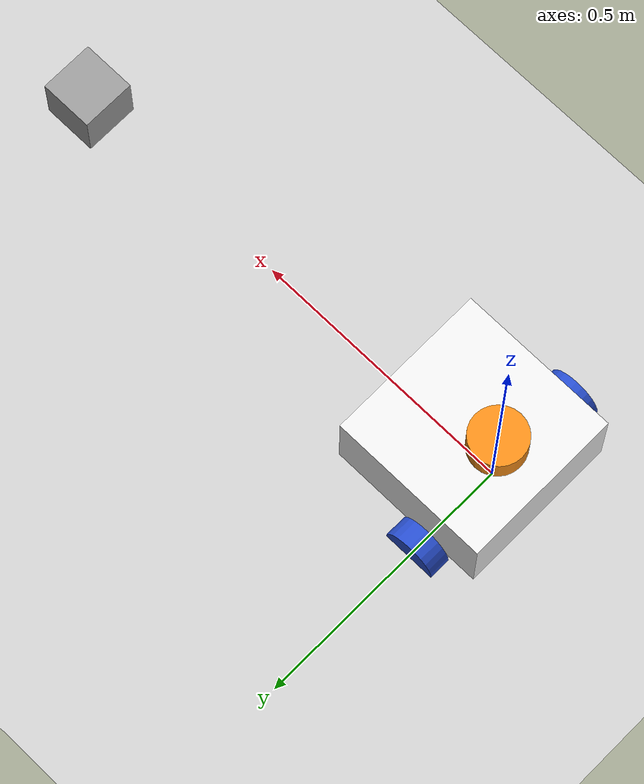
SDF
<sdf version="1.7">
 <world name="default">
  <light name="sun" type="directional">
   <pose>0 0 10 0 -0 0</pose>
   <diffuse>0.8 0.8 0.8 1</diffuse>
   <specular>0.2 0.2 0.2 1</specular>
   <attenuation>
    <range>1000</range>
    <constant>0.9</constant>
    <linear>0.01</linear>
    <quadratic>0.001</quadratic>
   </attenuation>
   <direction>-0.5 0.1 -0.9</direction>
   <spot><inner_angle>0</inner_angle><outer_angle>0</outer_angle><falloff>0</falloff></spot>
  </light>
  <model name="ground_plane">
   <static>1</static>
   <link name="link">
    <collision name="collision">
     <geometry><plane><normal>0 0 1</normal><size>100 100</size></plane></geometry>
     <surface>
      <contact><collide_bitmask>65535</collide_bitmask></contact>
      <friction><ode><mu>100</mu><mu2>50</mu2></ode></friction>
     </surface>
    </collision>
    <visual name="visual">
     <cast_shadows>0</cast_shadows>
     <geometry><plane><normal>0 0 1</normal><size>100 100</size></plane></geometry>
     <material>
      <script><uri>file://media/materials/scripts/gazebo.material</uri><name>Gazebo/Grey</name></script>
     </material>
    </visual>
   </link>
  </model>
  <gravity>0 0 -9.8</gravity>
  <magnetic_field>6e-06 2.3e-05 -4.2e-05</magnetic_field>
  <atmosphere type="adiabatic"/>
  <physics type="ode">
   <max_step_size>0.001</max_step_size>
   <real_time_factor>1</real_time_factor>
   <real_time_update_rate>1000</real_time_update_rate>
  </physics>
  <scene><ambient>0.4 0.4 0.4 1</ambient><background>0.7 0.7 0.7 1</background><shadows>1</shadows></scene>
  <spherical_coordinates>
   <surface_model>EARTH_WGS84</surface_model>
   <latitude_deg>0</latitude_deg>
   <longitude_deg>0</longitude_deg>
   <elevation>0</elevation>
   <heading_deg>0</heading_deg>
  </spherical_coordinates>
  <model name="my_bot">
   <link name="base_link">
    <inertial>
     <pose>0.09614 0 0.041667 0 -0 0</pose>
     <mass>1.425</mass>
     <inertia>
      <ixx>0.0106542</ixx>
      <ixy>0</ixy>
      <ixz>0.00383333</ixz>
      <iyy>0.0144129</iyy>
      <iyz>0</iyz>
      <izz>0.0130588</izz>
     </inertia>
    </inertial>
    <collision name="base_link_fixed_joint_lump__chassis_collision">
     <pose>0.05 0 0.075 0 -0 0</pose>
     <geometry><box><size>0.3 0.3 0.15</size></box></geometry>
    </collision>
    <collision name="base_link_fixed_joint_lump__caster_wheel_collision_1">
     <pose>0.14 0 0 0 -0 0</pose>
     <geometry><sphere><radius>0.05</radius></sphere></geometry>
     <surface><friction><ode><mu>0.001</mu><mu2>0.001</mu2></ode></friction></surface>
    </collision>
    <collision name="base_link_fixed_joint_lump__lidar_link_collision_2">
     <pose>0 0 0.175 0 -0 0</pose>
     <geometry><cylinder><length>0.055</length><radius>0.0508</radius></cylinder></geometry>
    </collision>
    <visual name="base_link_fixed_joint_lump__chassis_visual">
     <pose>0.05 0 0.075 0 -0 0</pose>
     <geometry><box><size>0.3 0.3 0.15</size></box></geometry>
     <material>
      <script><name>Gazebo/White</name><uri>file://media/materials/scripts/gazebo.material</uri></script>
     </material>
    </visual>
    <visual name="base_link_fixed_joint_lump__caster_wheel_visual_1">
     <pose>0.14 0 0 0 -0 0</pose>
     <geometry><sphere><radius>0.05</radius></sphere></geometry>
     <material>
      <script><name>Gazebo/Black</name><uri>file://media/materials/scripts/gazebo.material</uri></script>
     </material>
    </visual>
    <visual name="base_link_fixed_joint_lump__lidar_link_visual_2">
     <pose>0 0 0.175 0 -0 0</pose>
     <geometry><cylinder><length>0.055</length><radius>0.0508</radius></cylinder></geometry>
     <material>
      <script><name>Gazebo/Orange</name><uri>file://media/materials/scripts/gazebo.material</uri></script>
     </material>
    </visual>
    <sensor name="lidar" type="ray">
     <always_on>1</always_on>
     <visualize>1</visualize>
     <update_rate>5</update_rate>
     <ray>
      <scan>
       <horizontal>
        <samples>360</samples>
        <resolution>1</resolution>
        <min_angle>0</min_angle>
        <max_angle>6.28</max_angle>
       </horizontal>
       <vertical><samples>1</samples><min_angle>0</min_angle><max_angle>0</max_angle></vertical>
      </scan>
      <range><min>0.12</min><max>3.5</max><resolution>0.015</resolution></range>
      <noise><type>gaussian</type><mean>0</mean><stddev>0.01</stddev></noise>
     </ray>
     <plugin name="scan" filename="libgazebo_ros_ray_sensor.so">
      <ros><remapping>~/out:=scan</remapping></ros>
      <output_type>sensor_msgs/LaserScan</output_type>
      <frame_name>lidar_link</frame_name>
     </plugin>
     <pose>0 0 0.175 0 -0 0</pose>
    </sensor>
   </link>
   <joint name="left_wheel_joint" type="revolute">
    <pose relative_to="base_link">0 0.175 0 -1.5708 0 0</pose>
    <parent>base_link</parent>
    <child>left_wheel</child>
    <axis>
     <xyz>0 0 1</xyz>
     <limit><lower>-1e+16</lower><upper>1e+16</upper></limit>
     <dynamics><spring_reference>0</spring_reference><spring_stiffness>0</spring_stiffness></dynamics>
    </axis>
   </joint>
   <link name="left_wheel">
    <pose relative_to="left_wheel_joint">0 0 0 0 -0 0</pose>
    <inertial>
     <mass>0.1</mass>
     <inertia>
      <ixx>7.58333e-05</ixx>
      <ixy>0</ixy>
      <ixz>0</ixz>
      <iyy>7.58333e-05</iyy>
      <iyz>0</iyz>
      <izz>0.000125</izz>
     </inertia>
    </inertial>
    <collision name="left_wheel_collision">
     <geometry><cylinder><length>0.04</length><radius>0.05</radius></cylinder></geometry>
    </collision>
    <visual name="left_wheel_visual">
     <geometry><cylinder><length>0.04</length><radius>0.05</radius></cylinder></geometry>
     <material>
      <script><name>Gazebo/Blue</name><uri>file://media/materials/scripts/gazebo.material</uri></script>
     </material>
    </visual>
   </link>
   <joint name="right_wheel_joint" type="revolute">
    <pose relative_to="base_link">0 -0.175 0 1.5708 -0 0</pose>
    <parent>base_link</parent>
    <child>right_wheel</child>
    <axis>
     <xyz>0 0 -1</xyz>
     <limit><lower>-1e+16</lower><upper>1e+16</upper></limit>
     <dynamics><spring_reference>0</spring_reference><spring_stiffness>0</spring_stiffness></dynamics>
    </axis>
   </joint>
   <link name="right_wheel">
    <pose relative_to="right_wheel_joint">0 0 0 0 -0 0</pose>
    <inertial>
     <mass>0.1</mass>
     <inertia>
      <ixx>7.58333e-05</ixx>
      <ixy>0</ixy>
      <ixz>0</ixz>
      <iyy>7.58333e-05</iyy>
      <iyz>0</iyz>
      <izz>0.000125</izz>
     </inertia>
    </inertial>
    <collision name="right_wheel_collision">
     <geometry><cylinder><length>0.04</length><radius>0.05</radius></cylinder></geometry>
    </collision>
    <visual name="right_wheel_visual">
     <geometry><cylinder><length>0.04</length><radius>0.05</radius></cylinder></geometry>
     <material>
      <script><name>Gazebo/Blue</name><uri>file://media/materials/scripts/gazebo.material</uri></script>
     </material>
    </visual>
   </link>
   <static>0</static>
   <plugin name="diff_drive" filename="libgazebo_ros_diff_drive.so">
    <left_joint>left_wheel_joint</left_joint>
    <right_joint>right_wheel_joint</right_joint>
    <wheel_separation>0.35</wheel_separation>
    <wheel_diameter>0.1</wheel_diameter>
    <max_wheel_torque>200</max_wheel_torque>
    <max_wheel_acceleration>10.0</max_wheel_acceleration>
    <odometry_frame>odom</odometry_frame>
    <robot_base_frame>base_link</robot_base_frame>
    <publish_odom>1</publish_odom>
    <publish_odom_tf>1</publish_odom_tf>
    <publish_wheel_tf>1</publish_wheel_tf>
   </plugin>
  </model>
  <model name="0.1mCube">
   <link name="link_0">
    <inertial>
     <mass>0.01</mass>
     <inertia>
      <ixx>1.667e-05</ixx>
      <ixy>0</ixy>
      <ixz>0</ixz>
      <iyy>1.667e-05</iyy>
      <iyz>0</iyz>
      <izz>1.667e-05</izz>
     </inertia>
    </inertial>
    <pose>-0.427602 -1.36847 0 0 -0 0</pose>
    <visual name="visual">
     <geometry><box><size>0.1 0.1 0.1</size></box></geometry>
     <material>
      <lighting>1</lighting>
      <script><uri>file://media/materials/scripts/gazebo.material</uri><name>Gazebo/Grey</name></script>
      <shader type="pixel"><normal_map>__default__</normal_map></shader>
      <ambient>0.3 0.3 0.3 1</ambient>
      <diffuse>0.7 0.7 0.7 1</diffuse>
      <specular>0.01 0.01 0.01 1</specular>
      <emissive>0 0 0 1</emissive>
     </material>
    </visual>
    <collision name="collision">
     <geometry><box><size>0.1 0.1 0.1</size></box></geometry>
     <surface>
      <friction>
       <ode><mu>1</mu><mu2>1</mu2><fdir1>0 0 0</fdir1><slip1>0</slip1><slip2>0</slip2></ode>
       <torsional>
        <coefficient>1</coefficient>
        <patch_radius>0</patch_radius>
        <surface_radius>0</surface_radius>
        <use_patch_radius>1</use_patch_radius>
        <ode><slip>0</slip></ode>
       </torsional>
      </friction>
      <bounce><restitution_coefficient>0</restitution_coefficient><threshold>1e+06</threshold></bounce>
      <contact>
       <collide_without_contact>0</collide_without_contact>
       <collide_without_contact_bitmask>1</collide_without_contact_bitmask>
       <collide_bitmask>1</collide_bitmask>
       <ode>
        <soft_cfm>0</soft_cfm>
        <soft_erp>0.2</soft_erp>
        <kp>1e+13</kp>
        <kd>1</kd>
        <max_vel>0.01</max_vel>
        <min_depth>0</min_depth>
       </ode>
       <bullet>
        <split_impulse>1</split_impulse>
        <split_impulse_penetration_threshold>-0.01</split_impulse_penetration_threshold>
        <soft_cfm>0</soft_cfm>
        <soft_erp>0.2</soft_erp>
        <kp>1e+13</kp>
        <kd>1</kd>
       </bullet>
      </contact>
     </surface>
    </collision>
   </link>
   <static>0</static>
   <pose>1.34744 1.37674 0.050025 8e-06 -3.6e-05 0</pose>
  </model>
 </world>
</sdf>
